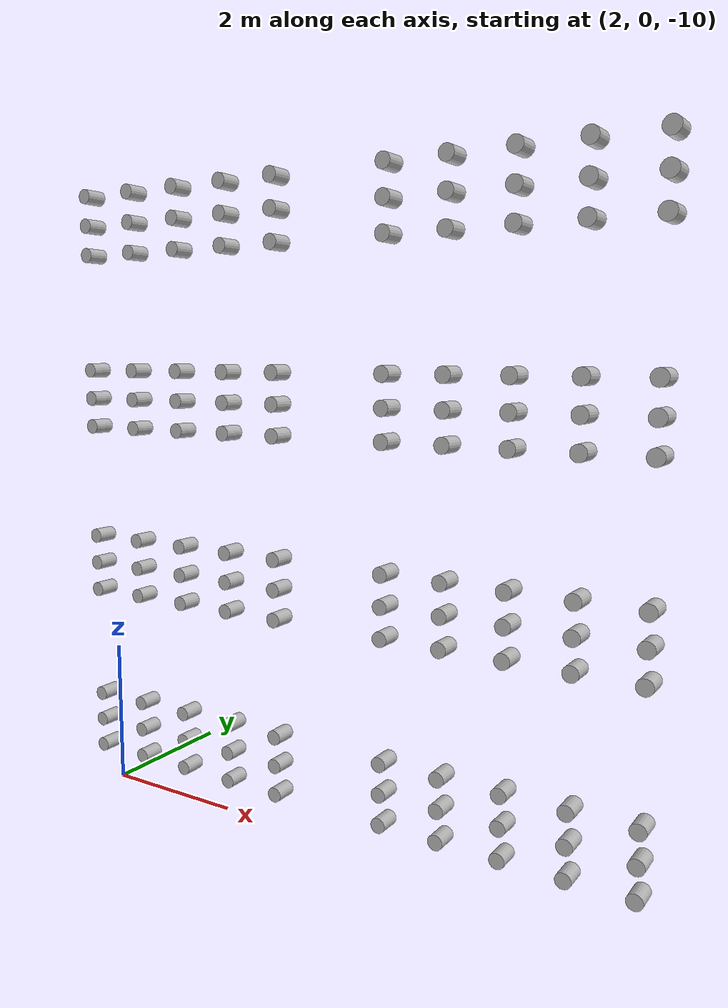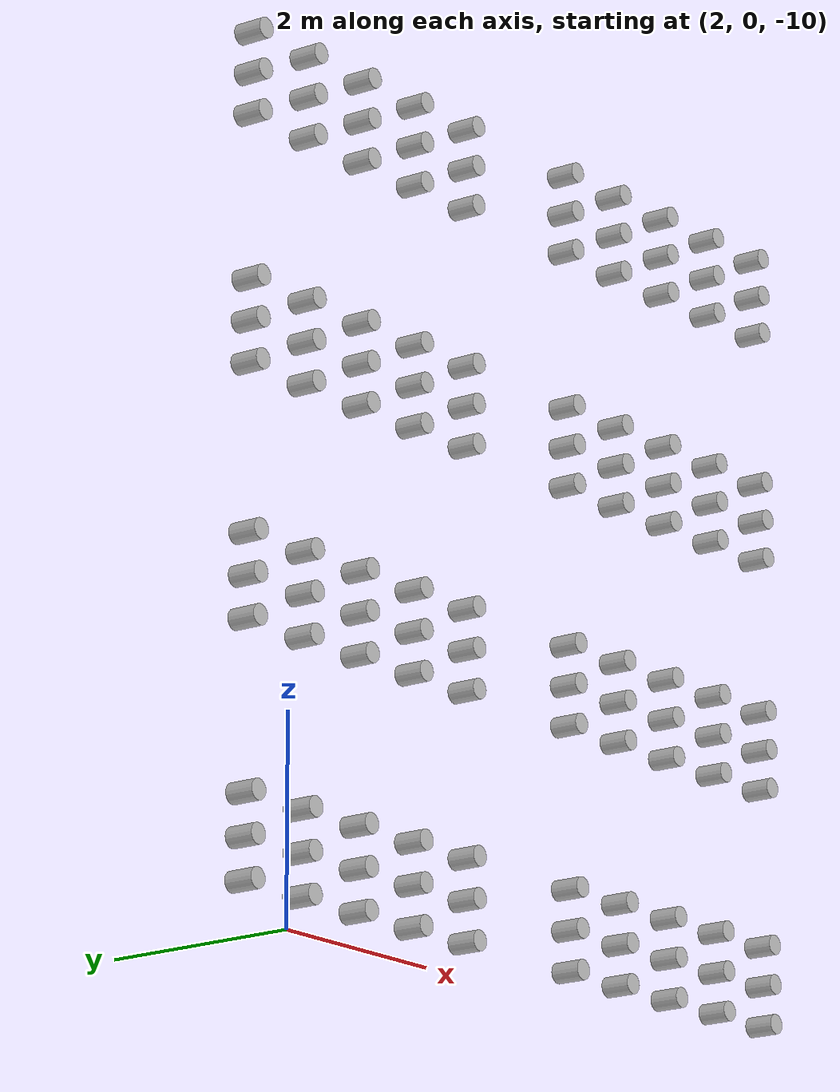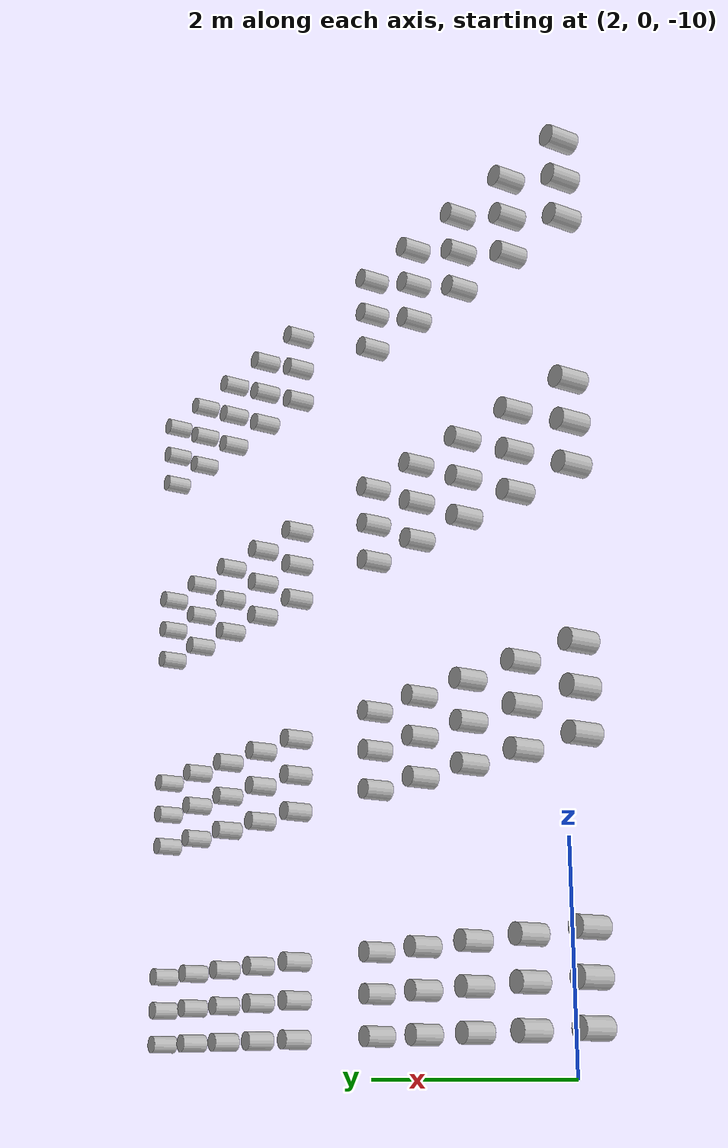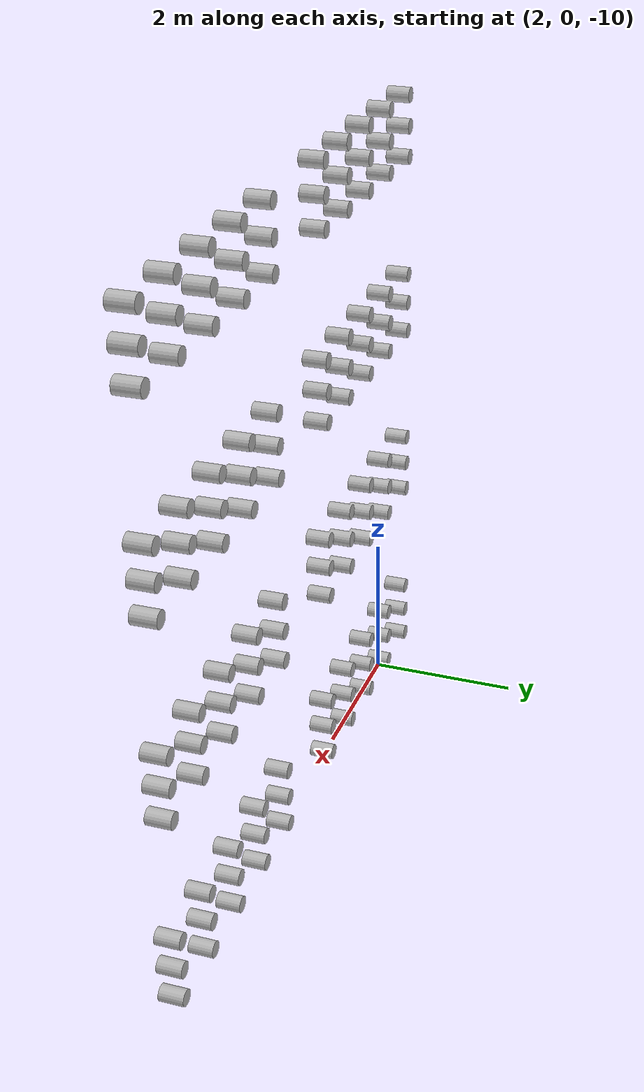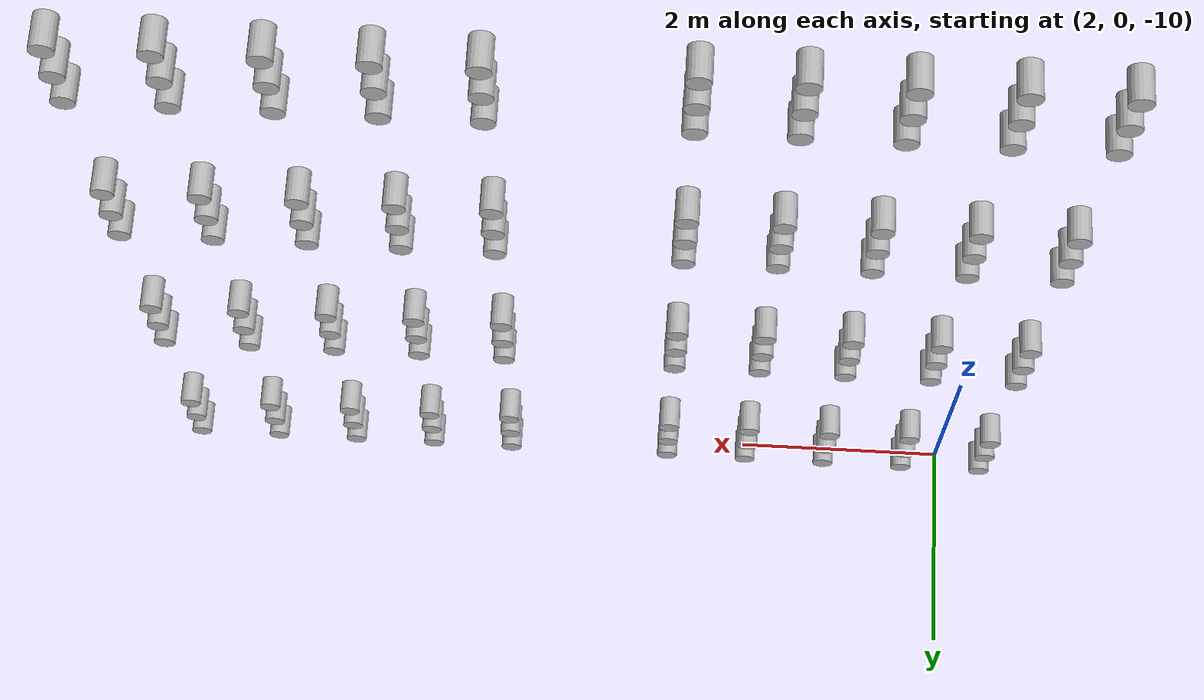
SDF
<?xml version="1.0" ?>
<sdf version="1.6">
  <model name="map_02">
    <link name="link">

      <collision name="collision">
        <geometry>
          <mesh>
            <uri>model://map_02/meshes/map_02.DAE</uri>
            <scale>0.1 0.1 0.1</scale>
          </mesh>
        </geometry>
      </collision>
      <visual name="visual">
	    <geometry>
          <mesh>
            <uri>model://map_02/meshes/map_02.DAE</uri>
            <scale>0.1 0.1 0.1</scale>
          </mesh>
        </geometry>
      </visual>
    </link>
    <static>1</static>
  </model>
</sdf>
